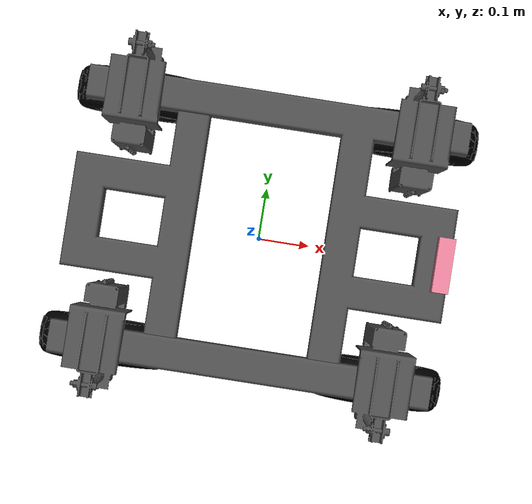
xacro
<?xml version="1.0"?>
<!-- Descripcion fisica del Delorian: vale igual para el robot real y para simulacion. -->
<robot xmlns:xacro="http://www.ros.org/wiki/xacro">

    <!-- ===== Parametros ===== -->
    <xacro:property name="wheel_r" value="0.128"/>
    <xacro:property name="wheel_w" value="0.168"/>
    <xacro:property name="wheel_m" value="1.0"/>
    <xacro:property name="wheelbase" value="0.526"/>   <!-- distancia eje delantero - eje trasero -->
    <xacro:property name="track" value="0.480"/>       <!-- distancia rueda izquierda - rueda derecha -->

    <!-- Centro de las 4 ruedas (a la altura del eje) expresado en el frame del CAD (Onshape) -->
    <xacro:property name="cad_cx" value="0.3869"/>
    <xacro:property name="cad_cy" value="0.0900"/>
    <xacro:property name="cad_cz" value="-0.2351"/>
    <!-- Giro para que +X de base_link sea el frente (REP-103).
         -pi/2 si el frente es +Y del CAD, +pi/2 si es -Y del CAD. -->
    <xacro:property name="chassis_yaw" value="${-pi/2}"/>

    <!-- ===== base_footprint (proyeccion en el suelo) y base_link (centro, altura del eje) ===== -->
    <link name="base_footprint"/>

    <link name="base_link"/>
    <joint name="base_joint" type="fixed">
        <parent link="base_footprint"/>
        <child link="base_link"/>
        <origin xyz="0 0 ${wheel_r}" rpy="0 0 0"/>
    </joint>

    <!-- ===== Chasis: numeros tal cual salen del CAD ===== -->
    <link name="chassis">
        <inertial>
            <origin xyz="0.3869 0.0900 -0.1514" rpy="0 0 0"/>
            <mass value="50"/>
            <inertia ixx="4.179" ixy="0.0155" ixz="0.0001"
                    iyy="3.258" iyz="-0.0001"
                    izz="5.867"/>
        </inertial>
        <collision>
            <origin xyz="0.387 0.090 -0.062" rpy="0 0 0"/>
            <geometry>
                <box size="0.670 0.700 0.397"/>
            </geometry>
        </collision>
        <visual>
            <origin xyz="0 0 0" rpy="1.5708 0 0"/>
            <geometry>
                <mesh filename="package://delorian_description/meshes/main_frame.stl" scale="0.001 0.001 0.001"/>
            </geometry>
            <material name="Metal">
                <color rgba="0.3 0.3 0.3 1"/>
            </material>
        </visual>
    </link>
    <!-- Lleva el centro de ruedas del CAD al origen de base_link: xyz = -Rz(yaw) * cad_c -->
    <joint name="chassis_joint" type="fixed">
        <parent link="base_link"/>
        <child link="chassis"/>
        <xacro:property name="c_x" value="${-(cos(chassis_yaw)*cad_cx - sin(chassis_yaw)*cad_cy)}"/>
        <xacro:property name="c_y" value="${-(sin(chassis_yaw)*cad_cx + cos(chassis_yaw)*cad_cy)}"/>
        <origin xyz="${c_x} ${c_y} ${-cad_cz}" rpy="0 0 ${chassis_yaw}"/>
    </joint>

    <!-- ===== Ruedas ===== -->
    <!-- side: 1 izquierda, -1 derecha. Si el cubo de la rueda queda mirando hacia adentro, cambia el signo del yaw del visual. -->
    <xacro:macro name="wheel" params="name x side">
        <link name="${name}">
            <inertial>
                <origin xyz="0 0 0" rpy="0 0 0"/>
                <mass value="${wheel_m}"/>
                <inertia ixx="${wheel_m/12*(3*wheel_r**2 + wheel_w**2)}" ixy="0" ixz="0"
                         iyy="${0.5*wheel_m*wheel_r**2}" iyz="0"
                         izz="${wheel_m/12*(3*wheel_r**2 + wheel_w**2)}"/>
            </inertial>
            <visual>
                <origin xyz="0 0 0" rpy="0 0 ${side*pi/2}"/>
                <geometry>
                    <mesh filename="package://delorian_description/meshes/wheel.stl" scale="0.001 0.001 0.001"/>
                </geometry>
                <material name="Caucho rojo">
                    <color rgba="0 0 0 1"/>
                </material>
            </visual>
            <collision>
                <origin xyz="0 0 0" rpy="${pi/2} 0 0"/>
                <geometry>
                    <cylinder radius="${wheel_r}" length="${wheel_w}"/>
                </geometry>
            </collision>
        </link>
        <joint name="${name}_joint" type="continuous">
            <parent link="base_link"/>
            <child link="${name}"/>
            <origin xyz="${x} ${side*track/2} 0" rpy="0 0 0"/>
            <axis xyz="0 1 0"/>
        </joint>
    </xacro:macro>

    <xacro:wheel name="front_left_wheel"  x="${wheelbase/2}"  side="1"/>
    <xacro:wheel name="rear_left_wheel"   x="${-wheelbase/2}" side="1"/>
    <xacro:wheel name="front_right_wheel" x="${wheelbase/2}"  side="-1"/>
    <xacro:wheel name="rear_right_wheel"  x="${-wheelbase/2}" side="-1"/>

    <link name="oak_link">
        <visual>
            <geometry>
                <box size="0.03 0.10 0.04"/>
            </geometry>
            <material name="rosado-raro">

                <color rgba="0.9 0.5 0.6 1"/>
            </material>
        </visual>
    </link>
    <joint name="oak_joint" type="fixed">
        <parent link="base_link"/>
        <child link="oak_link"/>
        <origin xyz="0.335 0 0.30" rpy="0 0 0"/>
    </joint>
    <link name="oak_optical_link">
    </link>
    <joint name="oak_optical_joint" type="fixed">
        <parent link="oak_link"/>
        <child link="oak_optical_link"/>
        <origin xyz="0 0 0" rpy="${0} 0 ${0}"/>
    </joint>
    <!-- ===== IMU ===== -->
    <link name="imu_link"/>
    <joint name="imu_joint" type="fixed">
        <parent link="base_link"/>
        <child link="imu_link"/>
        <origin xyz="0 0 0.05" rpy="0 0 0"/>
    </joint>

    <!-- ===== GPS (antena) ===== -->
    <link name="gps_link"/>
    <joint name="gps_joint" type="fixed">
        <parent link="base_link"/>
        <child link="gps_link"/>
        <origin xyz="-0.15 0 0.35" rpy="0 0 0"/>
    </joint>

</robot>
